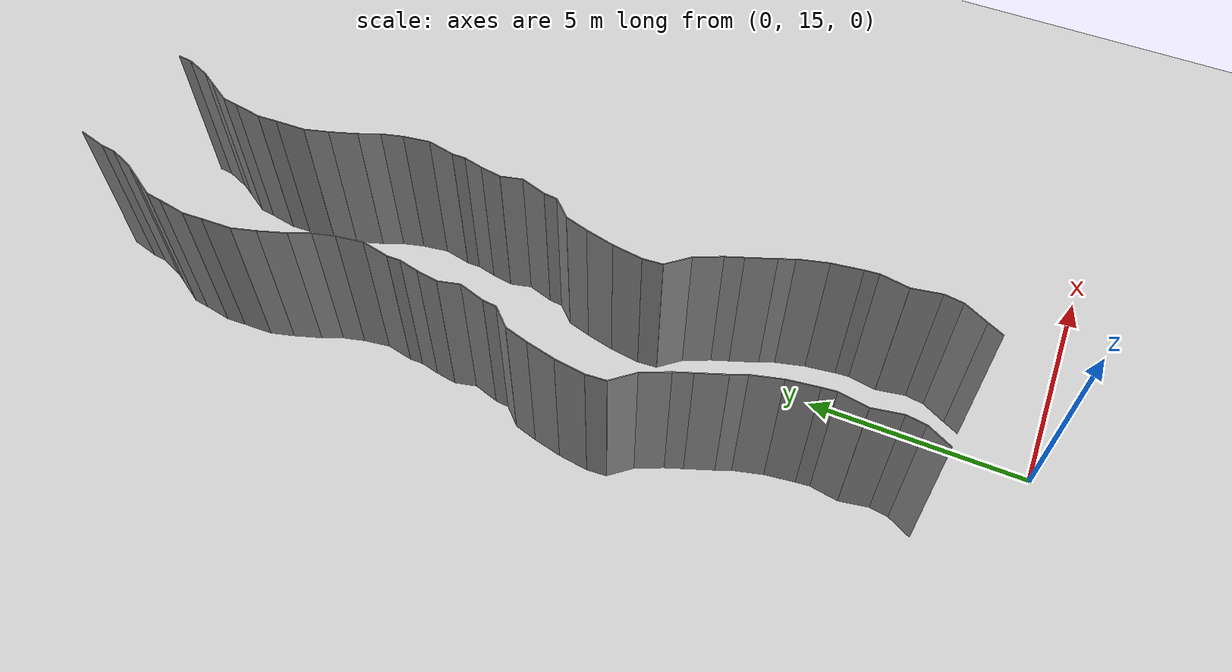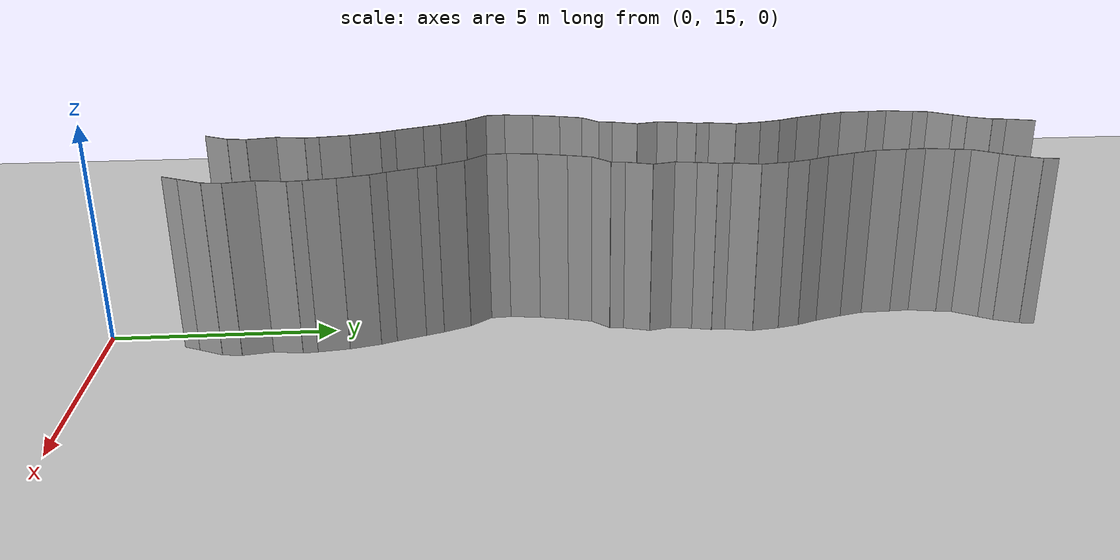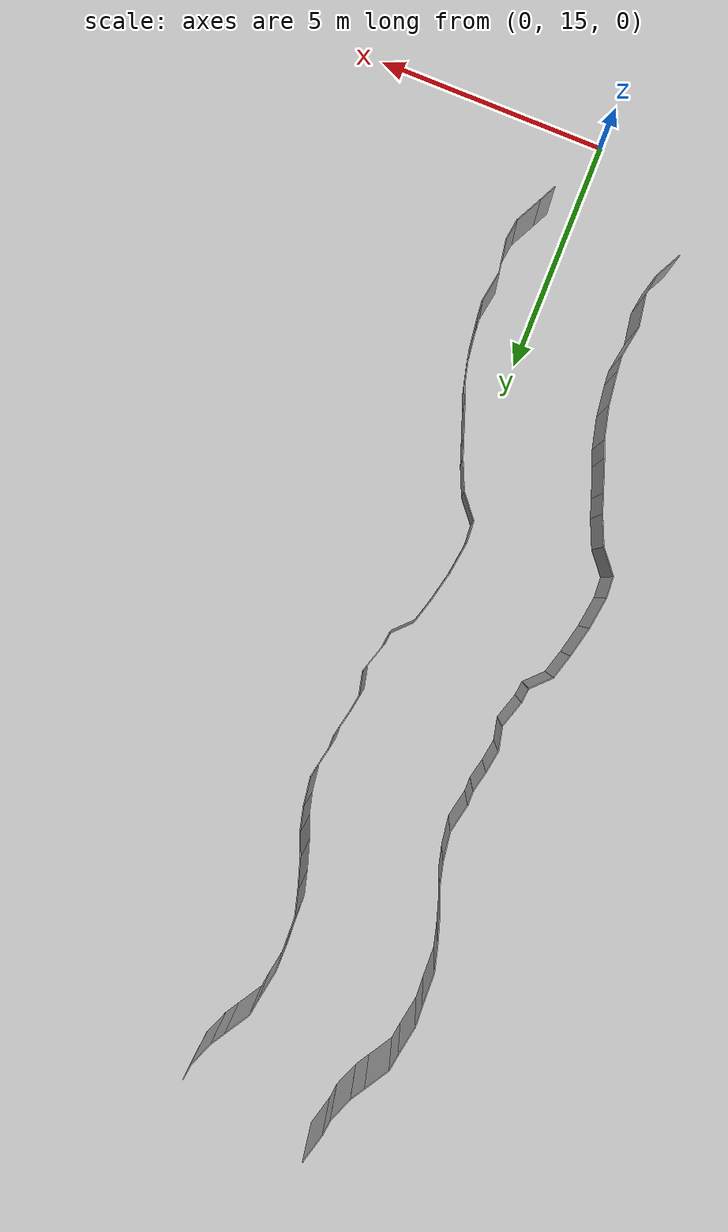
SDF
<sdf version="1.6">
 <world name="default">
  <model name="ground_plane">
   <static>1</static>
   <link name="link">
    <collision name="collision">
     <geometry><plane><normal>0 0 1</normal><size>200 200</size></plane></geometry>
     <surface><friction><ode><mu>100</mu><mu2>50</mu2></ode></friction></surface>
    </collision>
    <visual name="visual">
     <cast_shadows>0</cast_shadows>
     <geometry><plane><normal>0 0 1</normal><size>200 200</size></plane></geometry>
     <material>
      <script><uri>file://media/materials/scripts/gazebo.material</uri><name>Gazebo/Grey</name></script>
     </material>
    </visual>
   </link>
   <pose>0 100 0 0 -0 0</pose>
  </model>
  <model name="wall_73">
   <static>1</static>
   <pose>0.6423810964052454 16.893296942294064 2 0 0 -0.45980798360425457</pose>
   <link name="link">
    <collision name="collision"><geometry><box><size>0.02 0.396947442516 4</size></box></geometry></collision>
    <visual name="visual">
     <material>
      <script><name>Gazebo/Grey</name><uri>file://media/materials/scripts/gazebo.material</uri></script>
     </material>
     <geometry><box><size>0.02 0.396947442516 4</size></box></geometry>
    </visual>
   </link>
  </model>
  <model name="wall_74">
   <static>1</static>
   <pose>-2.1286909887462633 17.34180763285156 2 0 0 -0.479843706143277</pose>
   <link name="link">
    <collision name="collision"><geometry><box><size>0.02 0.610215181631 4</size></box></geometry></collision>
    <visual name="visual">
     <material>
      <script><name>Gazebo/Grey</name><uri>file://media/materials/scripts/gazebo.material</uri></script>
     </material>
     <geometry><box><size>0.02 0.610215181631 4</size></box></geometry>
    </visual>
   </link>
  </model>
  <model name="wall_75">
   <static>1</static>
   <pose>0.8713090112537367 17.34180763285156 2 0 0 -0.479843706143277</pose>
   <link name="link">
    <collision name="collision"><geometry><box><size>0.02 0.610215181631 4</size></box></geometry></collision>
    <visual name="visual">
     <material>
      <script><name>Gazebo/Grey</name><uri>file://media/materials/scripts/gazebo.material</uri></script>
     </material>
     <geometry><box><size>0.02 0.610215181631 4</size></box></geometry>
    </visual>
   </link>
  </model>
  <model name="wall_76">
   <static>1</static>
   <pose>-1.9580792691483393 17.82926040151824 2 0 0 -0.1364232853826706</pose>
   <link name="link">
    <collision name="collision"><geometry><box><size>0.02 0.437670230831 4</size></box></geometry></collision>
    <visual name="visual">
     <material>
      <script><name>Gazebo/Grey</name><uri>file://media/materials/scripts/gazebo.material</uri></script>
     </material>
     <geometry><box><size>0.02 0.437670230831 4</size></box></geometry>
    </visual>
   </link>
  </model>
  <model name="wall_77">
   <static>1</static>
   <pose>1.0419207308516607 17.82926040151824 2 0 0 -0.1364232853826706</pose>
   <link name="link">
    <collision name="collision"><geometry><box><size>0.02 0.437670230831 4</size></box></geometry></collision>
    <visual name="visual">
     <material>
      <script><name>Gazebo/Grey</name><uri>file://media/materials/scripts/gazebo.material</uri></script>
     </material>
     <geometry><box><size>0.02 0.437670230831 4</size></box></geometry>
    </visual>
   </link>
  </model>
  <model name="wall_78">
   <static>1</static>
   <pose>-1.985555625499083 18.379722639340304 2 0 0 0.16989217801936463</pose>
   <link name="link">
    <collision name="collision"><geometry><box><size>0.02 0.677068494063 4</size></box></geometry></collision>
    <visual name="visual">
     <material>
      <script><name>Gazebo/Grey</name><uri>file://media/materials/scripts/gazebo.material</uri></script>
     </material>
     <geometry><box><size>0.02 0.677068494063 4</size></box></geometry>
    </visual>
   </link>
  </model>
  <model name="wall_79">
   <static>1</static>
   <pose>1.014444374500917 18.379722639340304 2 0 0 0.16989217801936463</pose>
   <link name="link">
    <collision name="collision"><geometry><box><size>0.02 0.677068494063 4</size></box></geometry></collision>
    <visual name="visual">
     <material>
      <script><name>Gazebo/Grey</name><uri>file://media/materials/scripts/gazebo.material</uri></script>
     </material>
     <geometry><box><size>0.02 0.677068494063 4</size></box></geometry>
    </visual>
   </link>
  </model>
  <model name="wall_80">
   <static>1</static>
   <pose>-1.9898763580635057 19.039861054155637 2 0 0 -0.16068790436379288</pose>
   <link name="link">
    <collision name="collision"><geometry><box><size>0.02 0.661477604404 4</size></box></geometry></collision>
    <visual name="visual">
     <material>
      <script><name>Gazebo/Grey</name><uri>file://media/materials/scripts/gazebo.material</uri></script>
     </material>
     <geometry><box><size>0.02 0.661477604404 4</size></box></geometry>
    </visual>
   </link>
  </model>
  <model name="wall_81">
   <static>1</static>
   <pose>1.0101236419364943 19.039861054155637 2 0 0 -0.16068790436379288</pose>
   <link name="link">
    <collision name="collision"><geometry><box><size>0.02 0.661477604404 4</size></box></geometry></collision>
    <visual name="visual">
     <material>
      <script><name>Gazebo/Grey</name><uri>file://media/materials/scripts/gazebo.material</uri></script>
     </material>
     <geometry><box><size>0.02 0.661477604404 4</size></box></geometry>
    </visual>
   </link>
  </model>
  <model name="wall_82">
   <static>1</static>
   <pose>-1.9521070320199527 19.527482169927254 2 0 0 0.09372789589454818</pose>
   <link name="link">
    <collision name="collision"><geometry><box><size>0.02 0.323706971798 4</size></box></geometry></collision>
    <visual name="visual">
     <material>
      <script><name>Gazebo/Grey</name><uri>file://media/materials/scripts/gazebo.material</uri></script>
     </material>
     <geometry><box><size>0.02 0.323706971798 4</size></box></geometry>
    </visual>
   </link>
  </model>
  <model name="wall_83">
   <static>1</static>
   <pose>1.0478929679800473 19.527482169927254 2 0 0 0.09372789589454818</pose>
   <link name="link">
    <collision name="collision"><geometry><box><size>0.02 0.323706971798 4</size></box></geometry></collision>
    <visual name="visual">
     <material>
      <script><name>Gazebo/Grey</name><uri>file://media/materials/scripts/gazebo.material</uri></script>
     </material>
     <geometry><box><size>0.02 0.323706971798 4</size></box></geometry>
    </visual>
   </link>
  </model>
  <model name="wall_84">
   <static>1</static>
   <pose>-2.013707047289533 20.033928353792327 2 0 0 0.13372256777725391</pose>
   <link name="link">
    <collision name="collision"><geometry><box><size>0.02 0.696827182654 4</size></box></geometry></collision>
    <visual name="visual">
     <material>
      <script><name>Gazebo/Grey</name><uri>file://media/materials/scripts/gazebo.material</uri></script>
     </material>
     <geometry><box><size>0.02 0.696827182654 4</size></box></geometry>
    </visual>
   </link>
  </model>
  <model name="wall_85">
   <static>1</static>
   <pose>0.9862929527104671 20.033928353792327 2 0 0 0.13372256777725391</pose>
   <link name="link">
    <collision name="collision"><geometry><box><size>0.02 0.696827182654 4</size></box></geometry></collision>
    <visual name="visual">
     <material>
      <script><name>Gazebo/Grey</name><uri>file://media/materials/scripts/gazebo.material</uri></script>
     </material>
     <geometry><box><size>0.02 0.696827182654 4</size></box></geometry>
    </visual>
   </link>
  </model>
  <model name="wall_86">
   <static>1</static>
   <pose>-2.1459099252724734 20.718366124549046 2 0 0 0.24766101170491842</pose>
   <link name="link">
    <collision name="collision"><geometry><box><size>0.02 0.699615678234 4</size></box></geometry></collision>
    <visual name="visual">
     <material>
      <script><name>Gazebo/Grey</name><uri>file://media/materials/scripts/gazebo.material</uri></script>
     </material>
     <geometry><box><size>0.02 0.699615678234 4</size></box></geometry>
    </visual>
   </link>
  </model>
  <model name="wall_87">
   <static>1</static>
   <pose>0.8540900747275266 20.718366124549046 2 0 0 0.24766101170491842</pose>
   <link name="link">
    <collision name="collision"><geometry><box><size>0.02 0.699615678234 4</size></box></geometry></collision>
    <visual name="visual">
     <material>
      <script><name>Gazebo/Grey</name><uri>file://media/materials/scripts/gazebo.material</uri></script>
     </material>
     <geometry><box><size>0.02 0.699615678234 4</size></box></geometry>
    </visual>
   </link>
  </model>
  <model name="wall_88">
   <static>1</static>
   <pose>-2.300775379036483 21.227920543956593 2 0 0 0.385286078429582</pose>
   <link name="link">
    <collision name="collision"><geometry><box><size>0.02 0.367802793714 4</size></box></geometry></collision>
    <visual name="visual">
     <material>
      <script><name>Gazebo/Grey</name><uri>file://media/materials/scripts/gazebo.material</uri></script>
     </material>
     <geometry><box><size>0.02 0.367802793714 4</size></box></geometry>
    </visual>
   </link>
  </model>
  <model name="wall_89">
   <static>1</static>
   <pose>0.6992246209635171 21.227920543956593 2 0 0 0.385286078429582</pose>
   <link name="link">
    <collision name="collision"><geometry><box><size>0.02 0.367802793714 4</size></box></geometry></collision>
    <visual name="visual">
     <material>
      <script><name>Gazebo/Grey</name><uri>file://media/materials/scripts/gazebo.material</uri></script>
     </material>
     <geometry><box><size>0.02 0.367802793714 4</size></box></geometry>
    </visual>
   </link>
  </model>
  <model name="wall_90">
   <static>1</static>
   <pose>-2.485151948435989 21.720705179553672 2 0 0 0.3433860867244152</pose>
   <link name="link">
    <collision name="collision"><geometry><box><size>0.02 0.684702657984 4</size></box></geometry></collision>
    <visual name="visual">
     <material>
      <script><name>Gazebo/Grey</name><uri>file://media/materials/scripts/gazebo.material</uri></script>
     </material>
     <geometry><box><size>0.02 0.684702657984 4</size></box></geometry>
    </visual>
   </link>
  </model>
  <model name="wall_91">
   <static>1</static>
   <pose>0.514848051564011 21.720705179553672 2 0 0 0.3433860867244152</pose>
   <link name="link">
    <collision name="collision"><geometry><box><size>0.02 0.684702657984 4</size></box></geometry></collision>
    <visual name="visual">
     <material>
      <script><name>Gazebo/Grey</name><uri>file://media/materials/scripts/gazebo.material</uri></script>
     </material>
     <geometry><box><size>0.02 0.684702657984 4</size></box></geometry>
    </visual>
   </link>
  </model>
  <model name="wall_92">
   <static>1</static>
   <pose>-2.6707858554784822 22.241763378386615 2 0 0 0.34038816068097166</pose>
   <link name="link">
    <collision name="collision"><geometry><box><size>0.02 0.421574418677 4</size></box></geometry></collision>
    <visual name="visual">
     <material>
      <script><name>Gazebo/Grey</name><uri>file://media/materials/scripts/gazebo.material</uri></script>
     </material>
     <geometry><box><size>0.02 0.421574418677 4</size></box></geometry>
    </visual>
   </link>
  </model>
  <model name="wall_93">
   <static>1</static>
   <pose>0.32921414452151776 22.241763378386615 2 0 0 0.34038816068097166</pose>
   <link name="link">
    <collision name="collision"><geometry><box><size>0.02 0.421574418677 4</size></box></geometry></collision>
    <visual name="visual">
     <material>
      <script><name>Gazebo/Grey</name><uri>file://media/materials/scripts/gazebo.material</uri></script>
     </material>
     <geometry><box><size>0.02 0.421574418677 4</size></box></geometry>
    </visual>
   </link>
  </model>
  <model name="wall_94">
   <static>1</static>
   <pose>-2.8753942039761733 22.74197751561734 2 0 0 0.41885325053802014</pose>
   <link name="link">
    <collision name="collision"><geometry><box><size>0.02 0.660103667439 4</size></box></geometry></collision>
    <visual name="visual">
     <material>
      <script><name>Gazebo/Grey</name><uri>file://media/materials/scripts/gazebo.material</uri></script>
     </material>
     <geometry><box><size>0.02 0.660103667439 4</size></box></geometry>
    </visual>
   </link>
  </model>
  <model name="wall_95">
   <static>1</static>
   <pose>0.12460579602382671 22.74197751561734 2 0 0 0.41885325053802014</pose>
   <link name="link">
    <collision name="collision"><geometry><box><size>0.02 0.660103667439 4</size></box></geometry></collision>
    <visual name="visual">
     <material>
      <script><name>Gazebo/Grey</name><uri>file://media/materials/scripts/gazebo.material</uri></script>
     </material>
     <geometry><box><size>0.02 0.660103667439 4</size></box></geometry>
    </visual>
   </link>
  </model>
  <model name="wall_96">
   <static>1</static>
   <pose>-3.207803802893375 23.283745035352407 2 0 0 0.6897248996983495</pose>
   <link name="link">
    <collision name="collision"><geometry><box><size>0.02 0.622867867381 4</size></box></geometry></collision>
    <visual name="visual">
     <material>
      <script><name>Gazebo/Grey</name><uri>file://media/materials/scripts/gazebo.material</uri></script>
     </material>
     <geometry><box><size>0.02 0.622867867381 4</size></box></geometry>
    </visual>
   </link>
  </model>
  <model name="wall_97">
   <static>1</static>
   <pose>-0.20780380289337508 23.283745035352407 2 0 0 0.6897248996983495</pose>
   <link name="link">
    <collision name="collision"><geometry><box><size>0.02 0.622867867381 4</size></box></geometry></collision>
    <visual name="visual">
     <material>
      <script><name>Gazebo/Grey</name><uri>file://media/materials/scripts/gazebo.material</uri></script>
     </material>
     <geometry><box><size>0.02 0.622867867381 4</size></box></geometry>
    </visual>
   </link>
  </model>
  <model name="wall_98">
   <static>1</static>
   <pose>-3.422055338774478 23.75063721556729 2 0 0 0.07082184758613184</pose>
   <link name="link">
    <collision name="collision"><geometry><box><size>0.02 0.454430120707 4</size></box></geometry></collision>
    <visual name="visual">
     <material>
      <script><name>Gazebo/Grey</name><uri>file://media/materials/scripts/gazebo.material</uri></script>
     </material>
     <geometry><box><size>0.02 0.454430120707 4</size></box></geometry>
    </visual>
   </link>
  </model>
  <model name="wall_99">
   <static>1</static>
   <pose>-0.4220553387744781 23.75063721556729 2 0 0 0.07082184758613184</pose>
   <link name="link">
    <collision name="collision"><geometry><box><size>0.02 0.454430120707 4</size></box></geometry></collision>
    <visual name="visual">
     <material>
      <script><name>Gazebo/Grey</name><uri>file://media/materials/scripts/gazebo.material</uri></script>
     </material>
     <geometry><box><size>0.02 0.454430120707 4</size></box></geometry>
    </visual>
   </link>
  </model>
  <model name="wall_100">
   <static>1</static>
   <pose>-3.3918657031320403 24.320603692221262 2 0 0 -0.13395884915707643</pose>
   <link name="link">
    <collision name="collision"><geometry><box><size>0.02 0.692849296907 4</size></box></geometry></collision>
    <visual name="visual">
     <material>
      <script><name>Gazebo/Grey</name><uri>file://media/materials/scripts/gazebo.material</uri></script>
     </material>
     <geometry><box><size>0.02 0.692849296907 4</size></box></geometry>
    </visual>
   </link>
  </model>
  <model name="wall_101">
   <static>1</static>
   <pose>-0.3918657031320403 24.320603692221262 2 0 0 -0.13395884915707643</pose>
   <link name="link">
    <collision name="collision"><geometry><box><size>0.02 0.692849296907 4</size></box></geometry></collision>
    <visual name="visual">
     <material>
      <script><name>Gazebo/Grey</name><uri>file://media/materials/scripts/gazebo.material</uri></script>
     </material>
     <geometry><box><size>0.02 0.692849296907 4</size></box></geometry>
    </visual>
   </link>
  </model>
  <model name="wall_102">
   <static>1</static>
   <pose>-3.271170479216037 24.988705163812696 2 0 0 -0.2252720671400536</pose>
   <link name="link">
    <collision name="collision"><geometry><box><size>0.02 0.666398582214 4</size></box></geometry></collision>
    <visual name="visual">
     <material>
      <script><name>Gazebo/Grey</name><uri>file://media/materials/scripts/gazebo.material</uri></script>
     </material>
     <geometry><box><size>0.02 0.666398582214 4</size></box></geometry>
    </visual>
   </link>
  </model>
  <model name="wall_103">
   <static>1</static>
   <pose>-0.2711704792160372 24.988705163812696 2 0 0 -0.2252720671400536</pose>
   <link name="link">
    <collision name="collision"><geometry><box><size>0.02 0.666398582214 4</size></box></geometry></collision>
    <visual name="visual">
     <material>
      <script><name>Gazebo/Grey</name><uri>file://media/materials/scripts/gazebo.material</uri></script>
     </material>
     <geometry><box><size>0.02 0.666398582214 4</size></box></geometry>
    </visual>
   </link>
  </model>
  <model name="wall_104">
   <static>1</static>
   <pose>-3.1200929811178293 25.578035649354124 2 0 0 -0.28201593442299094</pose>
   <link name="link">
    <collision name="collision"><geometry><box><size>0.02 0.550861044927 4</size></box></geometry></collision>
    <visual name="visual">
     <material>
      <script><name>Gazebo/Grey</name><uri>file://media/materials/scripts/gazebo.material</uri></script>
     </material>
     <geometry><box><size>0.02 0.550861044927 4</size></box></geometry>
    </visual>
   </link>
  </model>
  <model name="wall_105">
   <static>1</static>
   <pose>-0.12009298111782929 25.578035649354124 2 0 0 -0.28201593442299094</pose>
   <link name="link">
    <collision name="collision"><geometry><box><size>0.02 0.550861044927 4</size></box></geometry></collision>
    <visual name="visual">
     <material>
      <script><name>Gazebo/Grey</name><uri>file://media/materials/scripts/gazebo.material</uri></script>
     </material>
     <geometry><box><size>0.02 0.550861044927 4</size></box></geometry>
    </visual>
   </link>
  </model>
  <model name="wall_106">
   <static>1</static>
   <pose>-2.854384959868161 26.035693172776455 2 0 0 -0.7748017405328128</pose>
   <link name="link">
    <collision name="collision"><geometry><box><size>0.02 0.540493660328 4</size></box></geometry></collision>
    <visual name="visual">
     <material>
      <script><name>Gazebo/Grey</name><uri>file://media/materials/scripts/gazebo.material</uri></script>
     </material>
     <geometry><box><size>0.02 0.540493660328 4</size></box></geometry>
    </visual>
   </link>
  </model>
  <model name="wall_107">
   <static>1</static>
   <pose>0.145615040131839 26.035693172776455 2 0 0 -0.7748017405328128</pose>
   <link name="link">
    <collision name="collision"><geometry><box><size>0.02 0.540493660328 4</size></box></geometry></collision>
    <visual name="visual">
     <material>
      <script><name>Gazebo/Grey</name><uri>file://media/materials/scripts/gazebo.material</uri></script>
     </material>
     <geometry><box><size>0.02 0.540493660328 4</size></box></geometry>
    </visual>
   </link>
  </model>
  <model name="wall_108">
   <static>1</static>
   <pose>-2.649442706603001 26.385101709921226 2 0 0 -0.10127978101081098</pose>
   <link name="link">
    <collision name="collision"><geometry><box><size>0.02 0.314212215613 4</size></box></geometry></collision>
    <visual name="visual">
     <material>
      <script><name>Gazebo/Grey</name><uri>file://media/materials/scripts/gazebo.material</uri></script>
     </material>
     <geometry><box><size>0.02 0.314212215613 4</size></box></geometry>
    </visual>
   </link>
  </model>
  <model name="wall_109">
   <static>1</static>
   <pose>0.3505572933969989 26.385101709921226 2 0 0 -0.10127978101081098</pose>
   <link name="link">
    <collision name="collision"><geometry><box><size>0.02 0.314212215613 4</size></box></geometry></collision>
    <visual name="visual">
     <material>
      <script><name>Gazebo/Grey</name><uri>file://media/materials/scripts/gazebo.material</uri></script>
     </material>
     <geometry><box><size>0.02 0.314212215613 4</size></box></geometry>
    </visual>
   </link>
  </model>
  <model name="wall_110">
   <static>1</static>
   <pose>-2.5428225381826164 26.83270526173158 2 0 0 -0.30195777333422363</pose>
   <link name="link">
    <collision name="collision"><geometry><box><size>0.02 0.610213481124 4</size></box></geometry></collision>
    <visual name="visual">
     <material>
      <script><name>Gazebo/Grey</name><uri>file://media/materials/scripts/gazebo.material</uri></script>
     </material>
     <geometry><box><size>0.02 0.610213481124 4</size></box></geometry>
    </visual>
   </link>
  </model>
  <model name="wall_111">
   <static>1</static>
   <pose>0.4571774618173836 26.83270526173158 2 0 0 -0.30195777333422363</pose>
   <link name="link">
    <collision name="collision"><geometry><box><size>0.02 0.610213481124 4</size></box></geometry></collision>
    <visual name="visual">
     <material>
      <script><name>Gazebo/Grey</name><uri>file://media/materials/scripts/gazebo.material</uri></script>
     </material>
     <geometry><box><size>0.02 0.610213481124 4</size></box></geometry>
    </visual>
   </link>
  </model>
  <model name="wall_112">
   <static>1</static>
   <pose>-2.5085976488007637 27.37004893508003 2 0 0 0.22576468964309865</pose>
   <link name="link">
    <collision name="collision"><geometry><box><size>0.02 0.504894914801 4</size></box></geometry></collision>
    <visual name="visual">
     <material>
      <script><name>Gazebo/Grey</name><uri>file://media/materials/scripts/gazebo.material</uri></script>
     </material>
     <geometry><box><size>0.02 0.504894914801 4</size></box></geometry>
    </visual>
   </link>
  </model>
  <model name="wall_113">
   <static>1</static>
   <pose>0.49140235119923625 27.37004893508003 2 0 0 0.22576468964309865</pose>
   <link name="link">
    <collision name="collision"><geometry><box><size>0.02 0.504894914801 4</size></box></geometry></collision>
    <visual name="visual">
     <material>
      <script><name>Gazebo/Grey</name><uri>file://media/materials/scripts/gazebo.material</uri></script>
     </material>
     <geometry><box><size>0.02 0.504894914801 4</size></box></geometry>
    </visual>
   </link>
  </model>
  <model name="wall_114">
   <static>1</static>
   <pose>-2.5281091648769576 27.855656684861938 2 0 0 -0.15323189591358757</pose>
   <link name="link">
    <collision name="collision"><geometry><box><size>0.02 0.484813783593 4</size></box></geometry></collision>
    <visual name="visual">
     <material>
      <script><name>Gazebo/Grey</name><uri>file://media/materials/scripts/gazebo.material</uri></script>
     </material>
     <geometry><box><size>0.02 0.484813783593 4</size></box></geometry>
    </visual>
   </link>
  </model>
  <model name="wall_115">
   <static>1</static>
   <pose>0.4718908351230424 27.855656684861938 2 0 0 -0.15323189591358757</pose>
   <link name="link">
    <collision name="collision"><geometry><box><size>0.02 0.484813783593 4</size></box></geometry></collision>
    <visual name="visual">
     <material>
      <script><name>Gazebo/Grey</name><uri>file://media/materials/scripts/gazebo.material</uri></script>
     </material>
     <geometry><box><size>0.02 0.484813783593 4</size></box></geometry>
    </visual>
   </link>
  </model>
  <model name="wall_116">
   <static>1</static>
   <pose>-2.4403756040811895 28.31684951296746 2 0 0 -0.22504071273954357</pose>
   <link name="link">
    <collision name="collision"><geometry><box><size>0.02 0.454718169926 4</size></box></geometry></collision>
    <visual name="visual">
     <material>
      <script><name>Gazebo/Grey</name><uri>file://media/materials/scripts/gazebo.material</uri></script>
     </material>
     <geometry><box><size>0.02 0.454718169926 4</size></box></geometry>
    </visual>
   </link>
  </model>
  <model name="wall_117">
   <static>1</static>
   <pose>0.5596243959188105 28.31684951296746 2 0 0 -0.22504071273954357</pose>
   <link name="link">
    <collision name="collision"><geometry><box><size>0.02 0.454718169926 4</size></box></geometry></collision>
    <visual name="visual">
     <material>
      <script><name>Gazebo/Grey</name><uri>file://media/materials/scripts/gazebo.material</uri></script>
     </material>
     <geometry><box><size>0.02 0.454718169926 4</size></box></geometry>
    </visual>
   </link>
  </model>
  <model name="wall_118">
   <static>1</static>
   <pose>-2.3907217988960006 28.692892401017428 2 0 0 0.0069970338588260204</pose>
   <link name="link">
    <collision name="collision"><geometry><box><size>0.02 0.308840874534 4</size></box></geometry></collision>
    <visual name="visual">
     <material>
      <script><name>Gazebo/Grey</name><uri>file://media/materials/scripts/gazebo.material</uri></script>
     </material>
     <geometry><box><size>0.02 0.308840874534 4</size></box></geometry>
    </visual>
   </link>
  </model>
  <model name="wall_119">
   <static>1</static>
   <pose>0.6092782011039994 28.692892401017428 2 0 0 0.0069970338588260204</pose>
   <link name="link">
    <collision name="collision"><geometry><box><size>0.02 0.308840874534 4</size></box></geometry></collision>
    <visual name="visual">
     <material>
      <script><name>Gazebo/Grey</name><uri>file://media/materials/scripts/gazebo.material</uri></script>
     </material>
     <geometry><box><size>0.02 0.308840874534 4</size></box></geometry>
    </visual>
   </link>
  </model>
  <model name="wall_120">
   <static>1</static>
   <pose>-2.3279417125012682 29.157729588340178 2 0 0 -0.20289209180853512</pose>
   <link name="link">
    <collision name="collision"><geometry><box><size>0.02 0.633842494587 4</size></box></geometry></collision>
    <visual name="visual">
     <material>
      <script><name>Gazebo/Grey</name><uri>file://media/materials/scripts/gazebo.material</uri></script>
     </material>
     <geometry><box><size>0.02 0.633842494587 4</size></box></geometry>
    </visual>
   </link>
  </model>
  <model name="wall_121">
   <static>1</static>
   <pose>0.6720582874987318 29.157729588340178 2 0 0 -0.20289209180853512</pose>
   <link name="link">
    <collision name="collision"><geometry><box><size>0.02 0.633842494587 4</size></box></geometry></collision>
    <visual name="visual">
     <material>
      <script><name>Gazebo/Grey</name><uri>file://media/materials/scripts/gazebo.material</uri></script>
     </material>
     <geometry><box><size>0.02 0.633842494587 4</size></box></geometry>
    </visual>
   </link>
  </model>
  <model name="wall_122">
   <static>1</static>
   <pose>-2.3071942050176246 29.771789007534405 2 0 0 0.14104511542920392</pose>
   <link name="link">
    <collision name="collision"><geometry><box><size>0.02 0.613368765005 4</size></box></geometry></collision>
    <visual name="visual">
     <material>
      <script><name>Gazebo/Grey</name><uri>file://media/materials/scripts/gazebo.material</uri></script>
     </material>
     <geometry><box><size>0.02 0.613368765005 4</size></box></geometry>
    </visual>
   </link>
  </model>
  <model name="wall_123">
   <static>1</static>
   <pose>0.6928057949823754 29.771789007534405 2 0 0 0.14104511542920392</pose>
   <link name="link">
    <collision name="collision"><geometry><box><size>0.02 0.613368765005 4</size></box></geometry></collision>
    <visual name="visual">
     <material>
      <script><name>Gazebo/Grey</name><uri>file://media/materials/scripts/gazebo.material</uri></script>
     </material>
     <geometry><box><size>0.02 0.613368765005 4</size></box></geometry>
    </visual>
   </link>
  </model>
  <model name="wall_124">
   <static>1</static>
   <pose>-2.412654400312144 30.32312807738533 2 0 0 0.24658183634449285</pose>
   <link name="link">
    <collision name="collision"><geometry><box><size>0.02 0.510852407069 4</size></box></geometry></collision>
    <visual name="visual">
     <material>
      <script><name>Gazebo/Grey</name><uri>file://media/materials/scripts/gazebo.material</uri></script>
     </material>
     <geometry><box><size>0.02 0.510852407069 4</size></box></geometry>
    </visual>
   </link>
  </model>
  <model name="wall_125">
   <static>1</static>
   <pose>0.5873455996878558 30.32312807738533 2 0 0 0.24658183634449285</pose>
   <link name="link">
    <collision name="collision"><geometry><box><size>0.02 0.510852407069 4</size></box></geometry></collision>
    <visual name="visual">
     <material>
      <script><name>Gazebo/Grey</name><uri>file://media/materials/scripts/gazebo.material</uri></script>
     </material>
     <geometry><box><size>0.02 0.510852407069 4</size></box></geometry>
    </visual>
   </link>
  </model>
  <model name="wall_126">
   <static>1</static>
   <pose>-2.5714268697547196 30.805203317399158 2 0 0 0.3903076852215103</pose>
   <link name="link">
    <collision name="collision"><geometry><box><size>0.02 0.506870841576 4</size></box></geometry></collision>
    <visual name="visual">
     <material>
      <script><name>Gazebo/Grey</name><uri>file://media/materials/scripts/gazebo.material</uri></script>
     </material>
     <geometry><box><size>0.02 0.506870841576 4</size></box></geometry>
    </visual>
   </link>
  </model>
  <model name="wall_127">
   <static>1</static>
   <pose>0.42857313024528043 30.805203317399158 2 0 0 0.3903076852215103</pose>
   <link name="link">
    <collision name="collision"><geometry><box><size>0.02 0.506870841576 4</size></box></geometry></collision>
    <visual name="visual">
     <material>
      <script><name>Gazebo/Grey</name><uri>file://media/materials/scripts/gazebo.material</uri></script>
     </material>
     <geometry><box><size>0.02 0.506870841576 4</size></box></geometry>
    </visual>
   </link>
  </model>
  <model name="wall_128">
   <static>1</static>
   <pose>-2.7668695658334275 31.351849595145246 2 0 0 0.30705894662066846</pose>
   <link name="link">
    <collision name="collision"><geometry><box><size>0.02 0.655187768043 4</size></box></geometry></collision>
    <visual name="visual">
     <material>
      <script><name>Gazebo/Grey</name><uri>file://media/materials/scripts/gazebo.material</uri></script>
     </material>
     <geometry><box><size>0.02 0.655187768043 4</size></box></geometry>
    </visual>
   </link>
  </model>
  <model name="wall_129">
   <static>1</static>
   <pose>0.23313043416657253 31.351849595145246 2 0 0 0.30705894662066846</pose>
   <link name="link">
    <collision name="collision"><geometry><box><size>0.02 0.655187768043 4</size></box></geometry></collision>
    <visual name="visual">
     <material>
      <script><name>Gazebo/Grey</name><uri>file://media/materials/scripts/gazebo.material</uri></script>
     </material>
     <geometry><box><size>0.02 0.655187768043 4</size></box></geometry>
    </visual>
   </link>
  </model>
  <model name="wall_130">
   <static>1</static>
   <pose>-2.938181145729605 31.935082272398162 2 0 0 0.26073271184359204</pose>
   <link name="link">
    <collision name="collision"><geometry><box><size>0.02 0.560879899309 4</size></box></geometry></collision>
    <visual name="visual">
     <material>
      <script><name>Gazebo/Grey</name><uri>file://media/materials/scripts/gazebo.material</uri></script>
     </material>
     <geometry><box><size>0.02 0.560879899309 4</size></box></geometry>
    </visual>
   </link>
  </model>
  <model name="wall_131">
   <static>1</static>
   <pose>0.06181885427039502 31.935082272398162 2 0 0 0.26073271184359204</pose>
   <link name="link">
    <collision name="collision"><geometry><box><size>0.02 0.560879899309 4</size></box></geometry></collision>
    <visual name="visual">
     <material>
      <script><name>Gazebo/Grey</name><uri>file://media/materials/scripts/gazebo.material</uri></script>
     </material>
     <geometry><box><size>0.02 0.560879899309 4</size></box></geometry>
    </visual>
   </link>
  </model>
  <model name="wall_132">
   <static>1</static>
   <pose>-3.021818435645942 32.55291872041059 2 0 0 0.032689114433233225</pose>
   <link name="link">
    <collision name="collision"><geometry><box><size>0.02 0.694120806727 4</size></box></geometry></collision>
    <visual name="visual">
     <material>
      <script><name>Gazebo/Grey</name><uri>file://media/materials/scripts/gazebo.material</uri></script>
     </material>
     <geometry><box><size>0.02 0.694120806727 4</size></box></geometry>
    </visual>
   </link>
  </model>
  <model name="wall_133">
   <static>1</static>
   <pose>-0.021818435645942102 32.55291872041059 2 0 0 0.032689114433233225</pose>
   <link name="link">
    <collision name="collision"><geometry><box><size>0.02 0.694120806727 4</size></box></geometry></collision>
    <visual name="visual">
     <material>
      <script><name>Gazebo/Grey</name><uri>file://media/materials/scripts/gazebo.material</uri></script>
     </material>
     <geometry><box><size>0.02 0.694120806727 4</size></box></geometry>
    </visual>
   </link>
  </model>
  <model name="wall_134">
   <static>1</static>
   <pose>-3.0444338076508406 33.12687101102067 2 0 0 0.0496000687240821</pose>
   <link name="link">
    <collision name="collision"><geometry><box><size>0.02 0.454713823921 4</size></box></geometry></collision>
    <visual name="visual">
     <material>
      <script><name>Gazebo/Grey</name><uri>file://media/materials/scripts/gazebo.material</uri></script>
     </material>
     <geometry><box><size>0.02 0.454713823921 4</size></box></geometry>
    </visual>
   </link>
  </model>
  <model name="wall_135">
   <static>1</static>
   <pose>-0.044433807650840595 33.12687101102067 2 0 0 0.0496000687240821</pose>
   <link name="link">
    <collision name="collision"><geometry><box><size>0.02 0.454713823921 4</size></box></geometry></collision>
    <visual name="visual">
     <material>
      <script><name>Gazebo/Grey</name><uri>file://media/materials/scripts/gazebo.material</uri></script>
     </material>
     <geometry><box><size>0.02 0.454713823921 4</size></box></geometry>
    </visual>
   </link>
  </model>
  <model name="wall_136">
   <static>1</static>
   <pose>-3.0002813613794928 33.67138379771692 2 0 0 -0.17285907205911605</pose>
   <link name="link">
    <collision name="collision"><geometry><box><size>0.02 0.644475567688 4</size></box></geometry></collision>
    <visual name="visual">
     <material>
      <script><name>Gazebo/Grey</name><uri>file://media/materials/scripts/gazebo.material</uri></script>
     </material>
     <geometry><box><size>0.02 0.644475567688 4</size></box></geometry>
    </visual>
   </link>
  </model>
  <model name="wall_137">
   <static>1</static>
   <pose>-0.00028136137949275053 33.67138379771692 2 0 0 -0.17285907205911605</pose>
   <link name="link">
    <collision name="collision"><geometry><box><size>0.02 0.644475567688 4</size></box></geometry></collision>
    <visual name="visual">
     <material>
      <script><name>Gazebo/Grey</name><uri>file://media/materials/scripts/gazebo.material</uri></script>
     </material>
     <geometry><box><size>0.02 0.644475567688 4</size></box></geometry>
    </visual>
   </link>
  </model>
  <model name="wall_138">
   <static>1</static>
   <pose>-2.9186453392276728 34.16925983585377 2 0 0 -0.1442536961646493</pose>
   <link name="link">
    <collision name="collision"><geometry><box><size>0.02 0.364668750067 4</size></box></geometry></collision>
    <visual name="visual">
     <material>
      <script><name>Gazebo/Grey</name><uri>file://media/materials/scripts/gazebo.material</uri></script>
     </material>
     <geometry><box><size>0.02 0.364668750067 4</size></box></geometry>
    </visual>
   </link>
  </model>
  <model name="wall_139">
   <static>1</static>
   <pose>0.08135466077232723 34.16925983585377 2 0 0 -0.1442536961646493</pose>
   <link name="link">
    <collision name="collision"><geometry><box><size>0.02 0.364668750067 4</size></box></geometry></collision>
    <visual name="visual">
     <material>
      <script><name>Gazebo/Grey</name><uri>file://media/materials/scripts/gazebo.material</uri></script>
     </material>
     <geometry><box><size>0.02 0.364668750067 4</size></box></geometry>
    </visual>
   </link>
  </model>
  <model name="wall_140">
   <static>1</static>
   <pose>-2.7316122085803536 34.60969840358581 2 0 0 -0.553947878372256</pose>
   <link name="link">
    <collision name="collision"><geometry><box><size>0.02 0.611433185901 4</size></box></geometry></collision>
    <visual name="visual">
     <material>
      <script><name>Gazebo/Grey</name><uri>file://media/materials/scripts/gazebo.material</uri></script>
     </material>
     <geometry><box><size>0.02 0.611433185901 4</size></box></geometry>
    </visual>
   </link>
  </model>
  <model name="wall_141">
   <static>1</static>
   <pose>0.2683877914196464 34.60969840358581 2 0 0 -0.553947878372256</pose>
   <link name="link">
    <collision name="collision"><geometry><box><size>0.02 0.611433185901 4</size></box></geometry></collision>
    <visual name="visual">
     <material>
      <script><name>Gazebo/Grey</name><uri>file://media/materials/scripts/gazebo.material</uri></script>
     </material>
     <geometry><box><size>0.02 0.611433185901 4</size></box></geometry>
    </visual>
   </link>
  </model>
  <model name="wall_142">
   <static>1</static>
   <pose>-2.47970679234572 35.0175456746009 2 0 0 -0.5521425175056482</pose>
   <link name="link">
    <collision name="collision"><geometry><box><size>0.02 0.347307463569 4</size></box></geometry></collision>
    <visual name="visual">
     <material>
      <script><name>Gazebo/Grey</name><uri>file://media/materials/scripts/gazebo.material</uri></script>
     </material>
     <geometry><box><size>0.02 0.347307463569 4</size></box></geometry>
    </visual>
   </link>
  </model>
  <model name="wall_143">
   <static>1</static>
   <pose>0.5202932076542801 35.0175456746009 2 0 0 -0.5521425175056482</pose>
   <link name="link">
    <collision name="collision"><geometry><box><size>0.02 0.347307463569 4</size></box></geometry></collision>
    <visual name="visual">
     <material>
      <script><name>Gazebo/Grey</name><uri>file://media/materials/scripts/gazebo.material</uri></script>
     </material>
     <geometry><box><size>0.02 0.347307463569 4</size></box></geometry>
    </visual>
   </link>
  </model>
  <model name="wall_144">
   <static>1</static>
   <pose>-2.2786008523491432 35.43620761005407 2 0 0 -0.38589763788993076</pose>
   <link name="link">
    <collision name="collision"><geometry><box><size>0.02 0.584617584551 4</size></box></geometry></collision>
    <visual name="visual">
     <material>
      <script><name>Gazebo/Grey</name><uri>file://media/materials/scripts/gazebo.material</uri></script>
     </material>
     <geometry><box><size>0.02 0.584617584551 4</size></box></geometry>
    </visual>
   </link>
  </model>
  <model name="wall_145">
   <static>1</static>
   <pose>0.7213991476508568 35.43620761005407 2 0 0 -0.38589763788993076</pose>
   <link name="link">
    <collision name="collision"><geometry><box><size>0.02 0.584617584551 4</size></box></geometry></collision>
    <visual name="visual">
     <material>
      <script><name>Gazebo/Grey</name><uri>file://media/materials/scripts/gazebo.material</uri></script>
     </material>
     <geometry><box><size>0.02 0.584617584551 4</size></box></geometry>
    </visual>
   </link>
  </model>
  <model name="wall_146">
   <static>1</static>
   <pose>-2.1501301567634963 35.87377052803293 2 0 0 -0.11018635401954882</pose>
   <link name="link">
    <collision name="collision"><geometry><box><size>0.02 0.33553528962 4</size></box></geometry></collision>
    <visual name="visual">
     <material>
      <script><name>Gazebo/Grey</name><uri>file://media/materials/scripts/gazebo.material</uri></script>
     </material>
     <geometry><box><size>0.02 0.33553528962 4</size></box></geometry>
    </visual>
   </link>
  </model>
  <model name="wall_147">
   <static>1</static>
   <pose>0.8498698432365037 35.87377052803293 2 0 0 -0.11018635401954882</pose>
   <link name="link">
    <collision name="collision"><geometry><box><size>0.02 0.33553528962 4</size></box></geometry></collision>
    <visual name="visual">
     <material>
      <script><name>Gazebo/Grey</name><uri>file://media/materials/scripts/gazebo.material</uri></script>
     </material>
     <geometry><box><size>0.02 0.33553528962 4</size></box></geometry>
    </visual>
   </link>
  </model>
  <model name="wall_148">
   <static>1</static>
   <pose>-2.046047556924079 36.362715006935 2 0 0 -0.2597787357633668</pose>
   <link name="link">
    <collision name="collision"><geometry><box><size>0.02 0.666760400928 4</size></box></geometry></collision>
    <visual name="visual">
     <material>
      <script><name>Gazebo/Grey</name><uri>file://media/materials/scripts/gazebo.material</uri></script>
     </material>
     <geometry><box><size>0.02 0.666760400928 4</size></box></geometry>
    </visual>
   </link>
  </model>
 </world>
</sdf>
